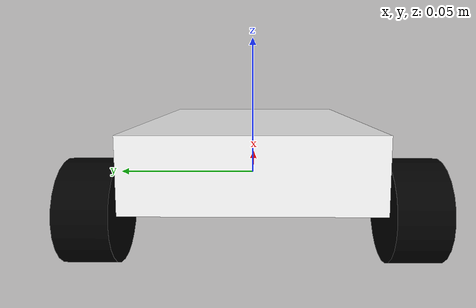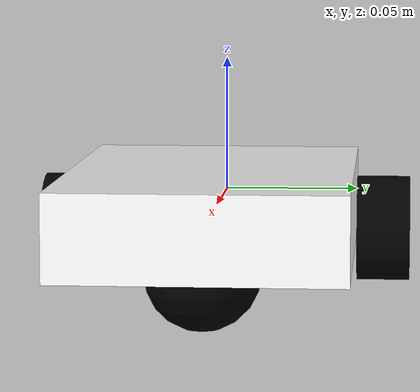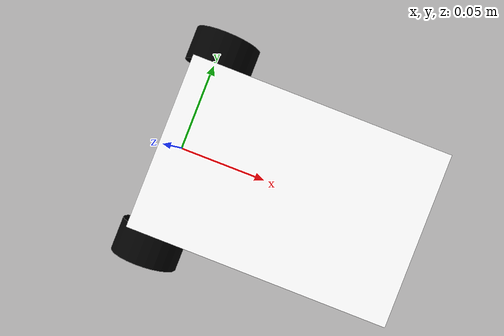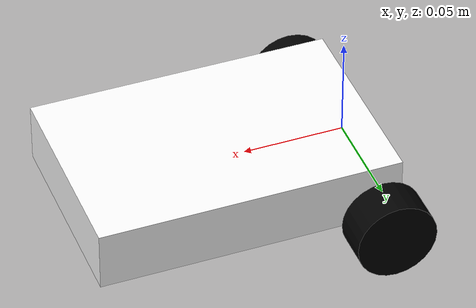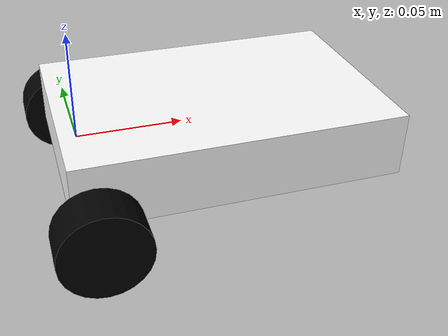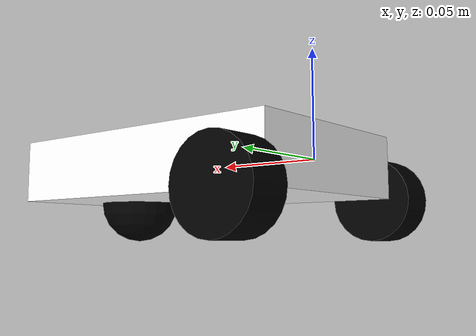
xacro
<?xml version="1.0" encoding="UTF-8"?>
<robot xmlns:xacro="http://www.ros.org/wiki/xacro">
    <xacro:include filename="inertial_macros.xacro"/>

    <!-- PROPERTIES -->
    <xacro:property name="chassis_length" value="0.15"/>
    <xacro:property name="chassis_width" value="0.10"/>
    <xacro:property name="chassis_height" value="0.03"/>
    <xacro:property name="wheel_mass" value="0.015"/>
    <xacro:property name="wheel_radius" value="0.02"/>
    <xacro:property name="wheel_thickness" value="0.02"/>
    <xacro:property name="wheel_offset_y" value="0.06"/>
    <xacro:property name="wheel_offset_z" value="-0.015"/>
    <xacro:property name="caster_radius" value="0.01"/>
    <xacro:property name="caster_wheel_mass" value="0.02"/>
    <xacro:property name="caster_wheel_offset_x" value="0.11"/>

    <material name="white">
        <color rgba="1 1 1 1" />
    </material>

    <material name="orange">
        <color rgba="1 0.3 0.1 1"/>
    </material>

    <material name="blue">
        <color rgba="0.2 0.2 1 1"/>
    </material>

    <material name="black">
        <color rgba="0 0 0 1"/>
    </material>

    <material name="red">
        <color rgba="1 0 0 1"/>
    </material>

    <!--  BASE LINK -->
    <link name="base_link"></link>

    <joint name="base_footprint_joint" type="fixed">
        <parent link="base_link"/>
        <child link="base_footprint"/>
        <origin xyz="0 0 0" rpy="0 0 0"/>
    </joint>

    <link name="base_footprint"></link>

    <!-- CHASSIS LINK -->
    <joint name="chassis_joint" type="fixed">
        <parent link="base_link"/>
        <child link="chassis_link"/>
        <origin xyz="-0.01 0.0 0.0" rpy="0.0 0.0 0.0"/>
    </joint>

    <link name="chassis_link">
        <visual>
            <origin xyz="${chassis_length/2} 0.0 0.0" rpy="0.0 0.0 0.0"/>
            <geometry>
                <box size="${chassis_length} ${chassis_width} ${chassis_height}"/>
            </geometry>
            <material name="white"/>
        </visual>
        <collision>
            <origin xyz="${chassis_length/2} 0.0 0.0" rpy="0.0 0.0 0.0"/>
            <geometry>
                <box size="${chassis_length} ${chassis_width} ${chassis_height}"/>
            </geometry>
        </collision>
        <xacro:inertial_box mass="0.25" x="${chassis_length}" y="${chassis_width}" z="${chassis_height}">
            <origin xyz="${chassis_length/2} 0 ${chassis_height/2}" rpy="0 0 0"/>
        </xacro:inertial_box>
    </link>

    <gazebo reference="chassis_link">
        <material>Gazebo/White</material>
    </gazebo>

    <!-- WHEELS -->
    <joint name="left_wheel_joint" type="continuous">
        <parent link="base_link"/>
        <child link="left_wheel_link"/>
        <origin xyz="0.0 ${wheel_offset_y} ${wheel_offset_z}" rpy="-${pi/2} 0.0 0.0"/>
        <axis xyz="0 0 1"/>
    </joint>

    <link name="left_wheel_link">
        <visual>
            <geometry>
                <cylinder radius="${wheel_radius}" length="${wheel_thickness}"/>
            </geometry>
            <material name="black"/>
        </visual>
        <collision>
            <geometry>
                <!-- Changed length to prevent wheel slippage -->
                <cylinder radius="${wheel_radius}" length="0.0001"/>
            </geometry>
        </collision>
        <xacro:inertial_cylinder mass="${wheel_mass}" length="${wheel_thickness}" radius="${wheel_radius}">
            <origin xyz="0 0 0" rpy="0 0 0"/>
        </xacro:inertial_cylinder>
    </link>

    <gazebo reference="left_wheel_link">
        <material>Gazebo/Black</material>
    </gazebo>

    <joint name="right_wheel_joint" type="continuous">
        <parent link="base_link"/>
        <child link="right_wheel_link"/>
        <origin xyz="0.0 ${-wheel_offset_y} ${wheel_offset_z}" rpy="${pi/2} 0.0 0.0"/>
        <axis xyz="0 0 -1"/>
    </joint>

    <link name="right_wheel_link">
        <visual>
            <geometry>
                <cylinder radius="${wheel_radius}" length="${wheel_thickness}"/>
            </geometry>
            <material name="black"/>
        </visual>
        <collision>
            <geometry>
                <!-- Changed length to prevent wheel slippage -->
                <cylinder radius="${wheel_radius}" length="0.0001"/>
            </geometry>
        </collision>
        <xacro:inertial_cylinder mass="${wheel_mass}" length="${wheel_thickness}" radius="${wheel_radius}">
            <origin xyz="0 0 0" rpy="0 0 0"/>
        </xacro:inertial_cylinder>
    </link>

    <gazebo reference="right_wheel_link">
        <material>Gazebo/Black</material>
    </gazebo>

    <!-- CASTER WHEEL -->
    <joint name="caster_wheel_joint" type="fixed">
        <parent link="base_link"/>
        <child link="caster_wheel_link"/>
        <origin xyz="${caster_wheel_offset_x} 0 ${wheel_offset_z}"/>
    </joint>

    <link name="caster_wheel_link">
        <visual>
            <geometry>
                <sphere radius="${wheel_radius}"/>
            </geometry>
            <material name="black"/>
        </visual>
        <collision>
            <geometry>
                <sphere radius="${wheel_radius}"/>
            </geometry>
        </collision>
        <xacro:inertial_sphere mass="${caster_wheel_mass}" radius="${wheel_radius}">
            <origin xyz="0 0 0" rpy="0 0 0"/>
        </xacro:inertial_sphere>
    </link>

    <gazebo reference="caster_wheel_link">
        <material>Gazebo/Black</material>
        <mu1>0.0001</mu1>
        <mu2>0.0002</mu2>
    </gazebo>

</robot>
